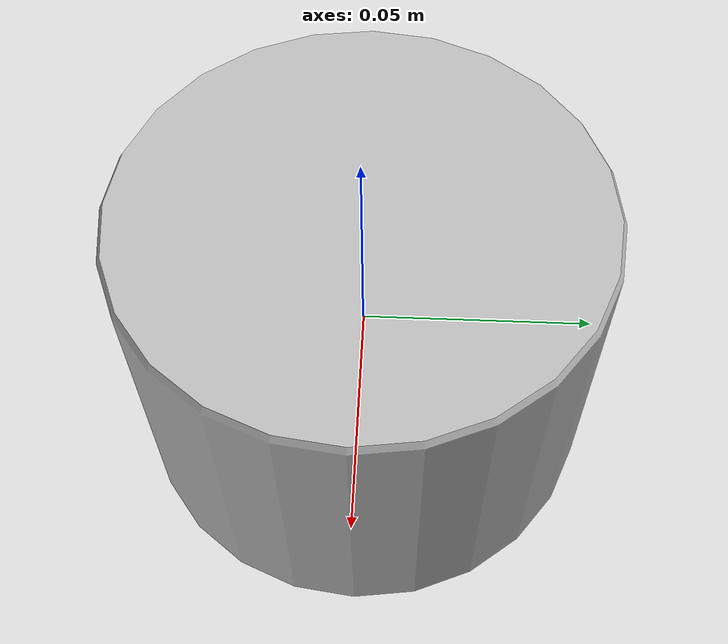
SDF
<?xml version="1.0"?>
<sdf version="1.6">
  <model name="3d_lidar">
    <link name="3d_lidar_link">
      <visual name="3d_lidar_visual">
      <pose>0 0 -0.035 0 0 0</pose>
        <geometry>
          <mesh>
            <uri>
              model://3d_lidar/mesh/3d_lidar.dae
            </uri>
          </mesh>
        </geometry>
      </visual>
      <collision name="3d_lidar_collision">
        <pose>0 0 0 0 0 0 </pose>
        <geometry>
          <cylinder>
            <radius>0.055</radius>
            <length>0.075</length>
          </cylinder>
        </geometry>
      </collision>
      <inertial>
        <pose>0 0 0 0 0 0 </pose>
        <mass>1</mass>
        <inertia>
          <ixx>0.00109375</ixx>
          <iyy>0.00109375</iyy>
          <izz>0.00125</izz>
          <ixy>0</ixy>
          <ixz>0</ixz>
          <iyz>0</iyz>
        </inertia>
      </inertial>
    </link>
  </model>
</sdf>
